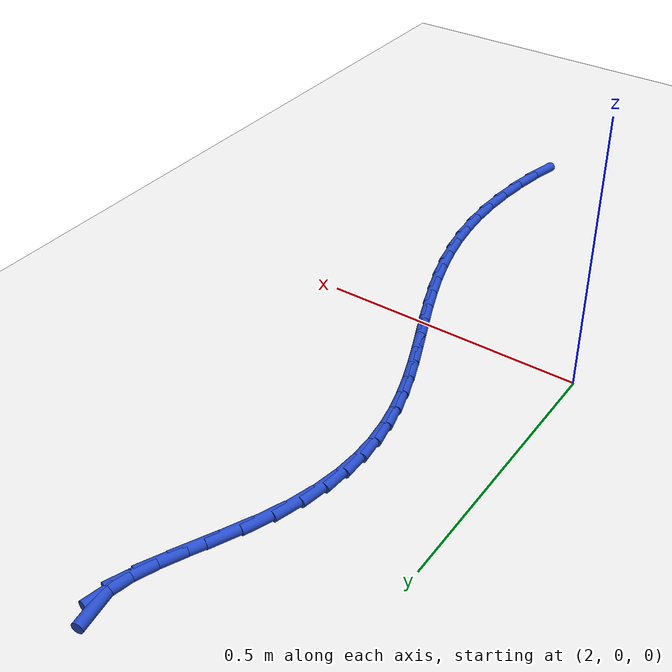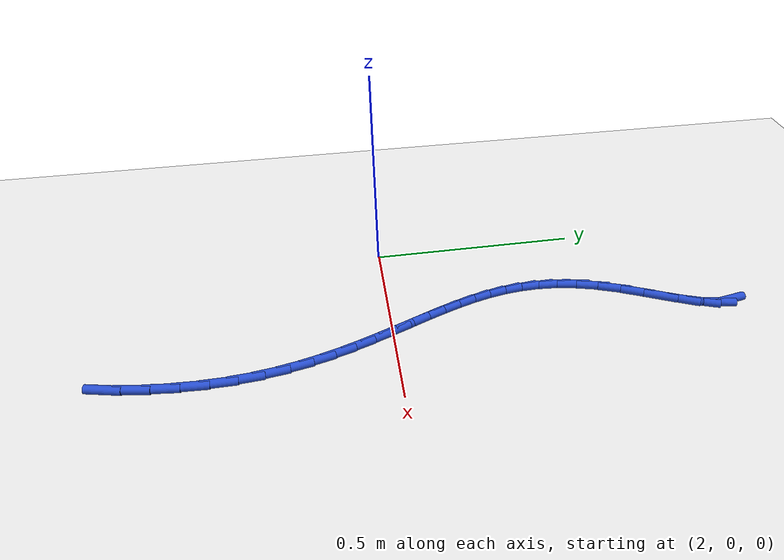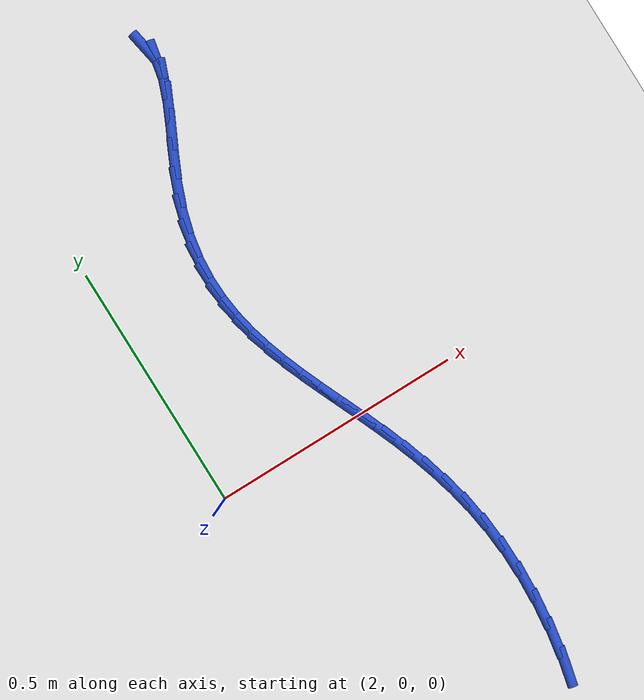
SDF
<sdf version="1.6">
 <world name="default">
  <model name="ground_plane">
   <static>1</static>
   <link name="link">
    <collision name="collision">
     <geometry><plane><normal>0 0 1</normal><size>100 100</size></plane></geometry>
     <surface><friction><ode><mu>100</mu><mu2>50</mu2></ode></friction></surface>
    </collision>
    <visual name="visual">
     <cast_shadows>0</cast_shadows>
     <geometry><plane><normal>0 0 1</normal><size>100 100</size></plane></geometry>
     <material>
      <script><uri>file://media/materials/scripts/gazebo.material</uri><name>Gazebo/WhiteGlow</name></script>
     </material>
    </visual>
   </link>
  </model>
  <model name="line">
   <link name="link_79">
    <pose>2.3257568882500244 0.8042704004582167 0.01 0 1.57 -1.3962594613123194</pose>
    <collision name="collision">
     <geometry><cylinder><radius>0.01</radius><length>0.08</length></cylinder></geometry>
    </collision>
    <visual name="visual">
     <material>
      <script><name>Gazebo/Blue</name><uri>file://media/materials/scripts/gazebo.material</uri></script>
     </material>
     <geometry><cylinder><radius>0.01</radius><length>0.08</length></cylinder></geometry>
    </visual>
   </link>
   <link name="link_80">
    <pose>2.3308178408024744 0.7755689735743223 0.01 0 1.57 1.3702653605516295</pose>
    <collision name="collision">
     <geometry><cylinder><radius>0.01</radius><length>0.08</length></cylinder></geometry>
    </collision>
    <visual name="visual">
     <material>
      <script><name>Gazebo/Blue</name><uri>file://media/materials/scripts/gazebo.material</uri></script>
     </material>
     <geometry><cylinder><radius>0.01</radius><length>0.08</length></cylinder></geometry>
    </visual>
   </link>
   <link name="link_81">
    <pose>2.323359651814947 0.7388766419082017 0.01 0 1.57 1.2022173317868696</pose>
    <collision name="collision">
     <geometry><cylinder><radius>0.01</radius><length>0.08</length></cylinder></geometry>
    </collision>
    <visual name="visual">
     <material>
      <script><name>Gazebo/Blue</name><uri>file://media/materials/scripts/gazebo.material</uri></script>
     </material>
     <geometry><cylinder><radius>0.01</radius><length>0.08</length></cylinder></geometry>
    </visual>
   </link>
   <link name="link_82">
    <pose>2.3068301029237173 0.6960793978583469 0.01 0 1.57 1.1304684910621832</pose>
    <collision name="collision">
     <geometry><cylinder><radius>0.01</radius><length>0.08</length></cylinder></geometry>
    </collision>
    <visual name="visual">
     <material>
      <script><name>Gazebo/Blue</name><uri>file://media/materials/scripts/gazebo.material</uri></script>
     </material>
     <geometry><cylinder><radius>0.01</radius><length>0.08</length></cylinder></geometry>
    </visual>
   </link>
   <link name="link_83">
    <pose>2.284676975765059 0.6490632338232505 0.01 0 1.57 1.1127672906847215</pose>
    <collision name="collision">
     <geometry><cylinder><radius>0.01</radius><length>0.08</length></cylinder></geometry>
    </collision>
    <visual name="visual">
     <material>
      <script><name>Gazebo/Blue</name><uri>file://media/materials/scripts/gazebo.material</uri></script>
     </material>
     <geometry><cylinder><radius>0.01</radius><length>0.08</length></cylinder></geometry>
    </visual>
   </link>
   <link name="link_84">
    <pose>2.2603480519752455 0.5997141422014027 0.01 0 1.57 1.1371615496339331</pose>
    <collision name="collision">
     <geometry><cylinder><radius>0.01</radius><length>0.08</length></cylinder></geometry>
    </collision>
    <visual name="visual">
     <material>
      <script><name>Gazebo/Blue</name><uri>file://media/materials/scripts/gazebo.material</uri></script>
     </material>
     <geometry><cylinder><radius>0.01</radius><length>0.08</length></cylinder></geometry>
    </visual>
   </link>
   <link name="link_85">
    <pose>2.237291113190553 0.5499181153912958 0.01 0 1.57 1.2058650607221721</pose>
    <collision name="collision">
     <geometry><cylinder><radius>0.01</radius><length>0.08</length></cylinder></geometry>
    </collision>
    <visual name="visual">
     <material>
      <script><name>Gazebo/Blue</name><uri>file://media/materials/scripts/gazebo.material</uri></script>
     </material>
     <geometry><cylinder><radius>0.01</radius><length>0.08</length></cylinder></geometry>
    </visual>
   </link>
   <link name="link_86">
    <pose>2.2187807730781026 0.5014672183749537 0.01 0 1.57 1.3003858675052062</pose>
    <collision name="collision">
     <geometry><cylinder><radius>0.01</radius><length>0.08</length></cylinder></geometry>
    </collision>
    <visual name="visual">
     <material>
      <script><name>Gazebo/Blue</name><uri>file://media/materials/scripts/gazebo.material</uri></script>
     </material>
     <geometry><cylinder><radius>0.01</radius><length>0.08</length></cylinder></geometry>
    </visual>
   </link>
   <link name="link_87">
    <pose>2.205888566906928 0.45495855228962423 0.01 0 1.57 1.400129753790239</pose>
    <collision name="collision">
     <geometry><cylinder><radius>0.01</radius><length>0.08</length></cylinder></geometry>
    </collision>
    <visual name="visual">
     <material>
      <script><name>Gazebo/Blue</name><uri>file://media/materials/scripts/gazebo.material</uri></script>
     </material>
     <geometry><cylinder><radius>0.01</radius><length>0.08</length></cylinder></geometry>
    </visual>
   </link>
   <link name="link_88">
    <pose>2.1981689370550104 0.410166337363942 0.01 0 1.57 1.5011326419237043</pose>
    <collision name="collision">
     <geometry><cylinder><radius>0.01</radius><length>0.08</length></cylinder></geometry>
    </collision>
    <visual name="visual">
     <material>
      <script><name>Gazebo/Blue</name><uri>file://media/materials/scripts/gazebo.material</uri></script>
     </material>
     <geometry><cylinder><radius>0.01</radius><length>0.08</length></cylinder></geometry>
    </visual>
   </link>
   <link name="link_89">
    <pose>2.195146368895696 0.3668485449552015 0.01 0 1.57 -1.542314840841961</pose>
    <collision name="collision">
     <geometry><cylinder><radius>0.01</radius><length>0.08</length></cylinder></geometry>
    </collision>
    <visual name="visual">
     <material>
      <script><name>Gazebo/Blue</name><uri>file://media/materials/scripts/gazebo.material</uri></script>
     </material>
     <geometry><cylinder><radius>0.01</radius><length>0.08</length></cylinder></geometry>
    </visual>
   </link>
   <link name="link_90">
    <pose>2.196345347802329 0.3247631464206983 0.01 0 1.57 -1.451040994923366</pose>
    <collision name="collision">
     <geometry><cylinder><radius>0.01</radius><length>0.08</length></cylinder></geometry>
    </collision>
    <visual name="visual">
     <material>
      <script><name>Gazebo/Blue</name><uri>file://media/materials/scripts/gazebo.material</uri></script>
     </material>
     <geometry><cylinder><radius>0.01</radius><length>0.08</length></cylinder></geometry>
    </visual>
   </link>
   <link name="link_91">
    <pose>2.201290359148254 0.2836681131177259 0.01 0 1.57 -1.3699192258039457</pose>
    <collision name="collision">
     <geometry><cylinder><radius>0.01</radius><length>0.08</length></cylinder></geometry>
    </collision>
    <visual name="visual">
     <material>
      <script><name>Gazebo/Blue</name><uri>file://media/materials/scripts/gazebo.material</uri></script>
     </material>
     <geometry><cylinder><radius>0.01</radius><length>0.08</length></cylinder></geometry>
    </visual>
   </link>
   <link name="link_92">
    <pose>2.2095058883068144 0.24332141640357974 0.01 0 1.57 -1.301160519872126</pose>
    <collision name="collision">
     <geometry><cylinder><radius>0.01</radius><length>0.08</length></cylinder></geometry>
    </collision>
    <visual name="visual">
     <material>
      <script><name>Gazebo/Blue</name><uri>file://media/materials/scripts/gazebo.material</uri></script>
     </material>
     <geometry><cylinder><radius>0.01</radius><length>0.08</length></cylinder></geometry>
    </visual>
   </link>
   <link name="link_93">
    <pose>2.220516420651356 0.2034810276355551 0.01 0 1.57 -1.2459111588475993</pose>
    <collision name="collision">
     <geometry><cylinder><radius>0.01</radius><length>0.08</length></cylinder></geometry>
    </collision>
    <visual name="visual">
     <material>
      <script><name>Gazebo/Blue</name><uri>file://media/materials/scripts/gazebo.material</uri></script>
     </material>
     <geometry><cylinder><radius>0.01</radius><length>0.08</length></cylinder></geometry>
    </visual>
   </link>
   <link name="link_94">
    <pose>2.2338464415552237 0.16390491817094582 0.01 0 1.57 -1.2044823246920398</pose>
    <collision name="collision">
     <geometry><cylinder><radius>0.01</radius><length>0.08</length></cylinder></geometry>
    </collision>
    <visual name="visual">
     <material>
      <script><name>Gazebo/Blue</name><uri>file://media/materials/scripts/gazebo.material</uri></script>
     </material>
     <geometry><cylinder><radius>0.01</radius><length>0.08</length></cylinder></geometry>
    </visual>
   </link>
   <link name="link_95">
    <pose>2.2490204363917603 0.12435105936704716 0.01 0 1.57 -1.1766458085030982</pose>
    <collision name="collision">
     <geometry><cylinder><radius>0.01</radius><length>0.08</length></cylinder></geometry>
    </collision>
    <visual name="visual">
     <material>
      <script><name>Gazebo/Blue</name><uri>file://media/materials/scripts/gazebo.material</uri></script>
     </material>
     <geometry><cylinder><radius>0.01</radius><length>0.08</length></cylinder></geometry>
    </visual>
   </link>
   <link name="link_96">
    <pose>2.265562890534312 0.08457742258115394 0.01 0 1.57 -1.1618876606395763</pose>
    <collision name="collision">
     <geometry><cylinder><radius>0.01</radius><length>0.08</length></cylinder></geometry>
    </collision>
    <visual name="visual">
     <material>
      <script><name>Gazebo/Blue</name><uri>file://media/materials/scripts/gazebo.material</uri></script>
     </material>
     <geometry><cylinder><radius>0.01</radius><length>0.08</length></cylinder></geometry>
    </visual>
   </link>
   <link name="link_97">
    <pose>2.2829982893562226 0.044341979170560875 0.01 0 1.57 -1.1595777959470808</pose>
    <collision name="collision">
     <geometry><cylinder><radius>0.01</radius><length>0.08</length></cylinder></geometry>
    </collision>
    <visual name="visual">
     <material>
      <script><name>Gazebo/Blue</name><uri>file://media/materials/scripts/gazebo.material</uri></script>
     </material>
     <geometry><cylinder><radius>0.01</radius><length>0.08</length></cylinder></geometry>
    </visual>
   </link>
   <link name="link_98">
    <pose>2.300851118230837 0.0034027004925637205 0.01 0 1.57 -1.169055943695023</pose>
    <collision name="collision">
     <geometry><cylinder><radius>0.01</radius><length>0.08</length></cylinder></geometry>
    </collision>
    <visual name="visual">
     <material>
      <script><name>Gazebo/Blue</name><uri>file://media/materials/scripts/gazebo.material</uri></script>
     </material>
     <geometry><cylinder><radius>0.01</radius><length>0.08</length></cylinder></geometry>
    </visual>
   </link>
   <link name="link_99">
    <pose>2.3186458625314983 -0.03848244209554445 0.01 0 1.57 -1.1896510412998083</pose>
    <collision name="collision">
     <geometry><cylinder><radius>0.01</radius><length>0.08</length></cylinder></geometry>
    </collision>
    <visual name="visual">
     <material>
      <script><name>Gazebo/Blue</name><uri>file://media/materials/scripts/gazebo.material</uri></script>
     </material>
     <geometry><cylinder><radius>0.01</radius><length>0.08</length></cylinder></geometry>
    </visual>
   </link>
   <link name="link_100">
    <pose>2.3359070076315533 -0.08155547723646808 0.01 0 1.57 -1.2206538850932283</pose>
    <collision name="collision">
     <geometry><cylinder><radius>0.01</radius><length>0.08</length></cylinder></geometry>
    </collision>
    <visual name="visual">
     <material>
      <script><name>Gazebo/Blue</name><uri>file://media/materials/scripts/gazebo.material</uri></script>
     </material>
     <geometry><cylinder><radius>0.01</radius><length>0.08</length></cylinder></geometry>
    </visual>
   </link>
   <link name="link_101">
    <pose>2.352159038904344 -0.12605843357291233 0.01 0 1.57 -1.2612616941773735</pose>
    <collision name="collision">
     <geometry><cylinder><radius>0.01</radius><length>0.08</length></cylinder></geometry>
    </collision>
    <visual name="visual">
     <material>
      <script><name>Gazebo/Blue</name><uri>file://media/materials/scripts/gazebo.material</uri></script>
     </material>
     <geometry><cylinder><radius>0.01</radius><length>0.08</length></cylinder></geometry>
    </visual>
   </link>
   <link name="link_102">
    <pose>2.3669264417232174 -0.17223333974758237 0.01 0 1.57 -1.3105131876654001</pose>
    <collision name="collision">
     <geometry><cylinder><radius>0.01</radius><length>0.08</length></cylinder></geometry>
    </collision>
    <visual name="visual">
     <material>
      <script><name>Gazebo/Blue</name><uri>file://media/materials/scripts/gazebo.material</uri></script>
     </material>
     <geometry><cylinder><radius>0.01</radius><length>0.08</length></cylinder></geometry>
    </visual>
   </link>
   <link name="link_103">
    <pose>2.379733701461517 -0.22032222440318344 0.01 0 1.57 -1.3672343976023598</pose>
    <collision name="collision">
     <geometry><cylinder><radius>0.01</radius><length>0.08</length></cylinder></geometry>
    </collision>
    <visual name="visual">
     <material>
      <script><name>Gazebo/Blue</name><uri>file://media/materials/scripts/gazebo.material</uri></script>
     </material>
     <geometry><cylinder><radius>0.01</radius><length>0.08</length></cylinder></geometry>
    </visual>
   </link>
   <link name="link_104">
    <pose>2.3901053034925868 -0.2705671161824207 0.01 0 1.57 -1.4300161954279944</pose>
    <collision name="collision">
     <geometry><cylinder><radius>0.01</radius><length>0.08</length></cylinder></geometry>
    </collision>
    <visual name="visual">
     <material>
      <script><name>Gazebo/Blue</name><uri>file://media/materials/scripts/gazebo.material</uri></script>
     </material>
     <geometry><cylinder><radius>0.01</radius><length>0.08</length></cylinder></geometry>
    </visual>
   </link>
   <link name="link_105">
    <pose>2.397565733189772 -0.32321004372799833 0.01 0 1.57 -1.4972271888943611</pose>
    <collision name="collision">
     <geometry><cylinder><radius>0.01</radius><length>0.08</length></cylinder></geometry>
    </collision>
    <visual name="visual">
     <material>
      <script><name>Gazebo/Blue</name><uri>file://media/materials/scripts/gazebo.material</uri></script>
     </material>
     <geometry><cylinder><radius>0.01</radius><length>0.08</length></cylinder></geometry>
    </visual>
   </link>
   <link name="link_106">
    <pose>2.4016401041336097 -0.3784916152297691 0.01 0 1.57 -1.5642461406510524</pose>
    <collision name="collision">
     <geometry><cylinder><radius>0.01</radius><length>0.08</length></cylinder></geometry>
    </collision>
    <visual name="visual">
     <material>
      <script><name>Gazebo/Blue</name><uri>file://media/materials/scripts/gazebo.material</uri></script>
     </material>
     <geometry><cylinder><radius>0.01</radius><length>0.08</length></cylinder></geometry>
    </visual>
   </link>
   <link name="link_107">
    <pose>2.402018628530968 -0.4362791308069659 0.01 0 1.57 1.5161749403158544</pose>
    <collision name="collision">
     <geometry><cylinder><radius>0.01</radius><length>0.08</length></cylinder></geometry>
    </collision>
    <visual name="visual">
     <material>
      <script><name>Gazebo/Blue</name><uri>file://media/materials/scripts/gazebo.material</uri></script>
     </material>
     <geometry><cylinder><radius>0.01</radius><length>0.08</length></cylinder></geometry>
    </visual>
   </link>
   <link name="link_108">
    <pose>2.3987769418571085 -0.49556840170037075 0.01 0 1.57 1.458447822343195</pose>
    <collision name="collision">
     <geometry><cylinder><radius>0.01</radius><length>0.08</length></cylinder></geometry>
    </collision>
    <visual name="visual">
     <material>
      <script><name>Gazebo/Blue</name><uri>file://media/materials/scripts/gazebo.material</uri></script>
     </material>
     <geometry><cylinder><radius>0.01</radius><length>0.08</length></cylinder></geometry>
    </visual>
   </link>
   <link name="link_109">
    <pose>2.392045581715792 -0.5552310987619675 0.01 0 1.57 1.401149703506283</pose>
    <collision name="collision">
     <geometry><cylinder><radius>0.01</radius><length>0.08</length></cylinder></geometry>
    </collision>
    <visual name="visual">
     <material>
      <script><name>Gazebo/Blue</name><uri>file://media/materials/scripts/gazebo.material</uri></script>
     </material>
     <geometry><cylinder><radius>0.01</radius><length>0.08</length></cylinder></geometry>
    </visual>
   </link>
   <link name="link_110">
    <pose>2.381955085710779 -0.6141388928437399 0.01 0 1.57 1.3413421646842134</pose>
    <collision name="collision">
     <geometry><cylinder><radius>0.01</radius><length>0.08</length></cylinder></geometry>
    </collision>
    <visual name="visual">
     <material>
      <script><name>Gazebo/Blue</name><uri>file://media/materials/scripts/gazebo.material</uri></script>
     </material>
     <geometry><cylinder><radius>0.01</radius><length>0.08</length></cylinder></geometry>
    </visual>
   </link>
  </model>
 </world>
</sdf>
